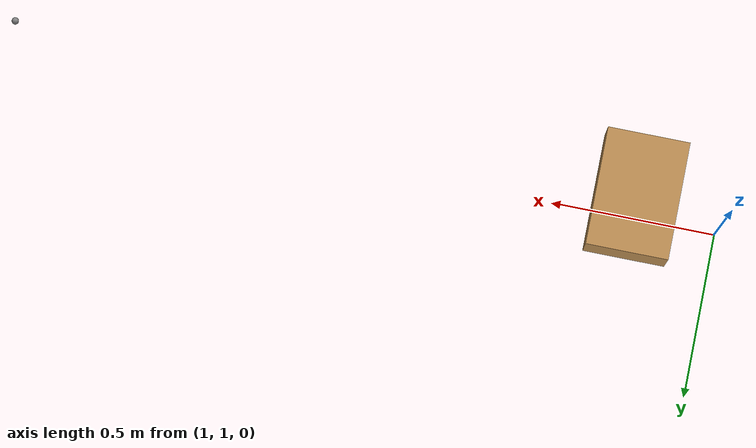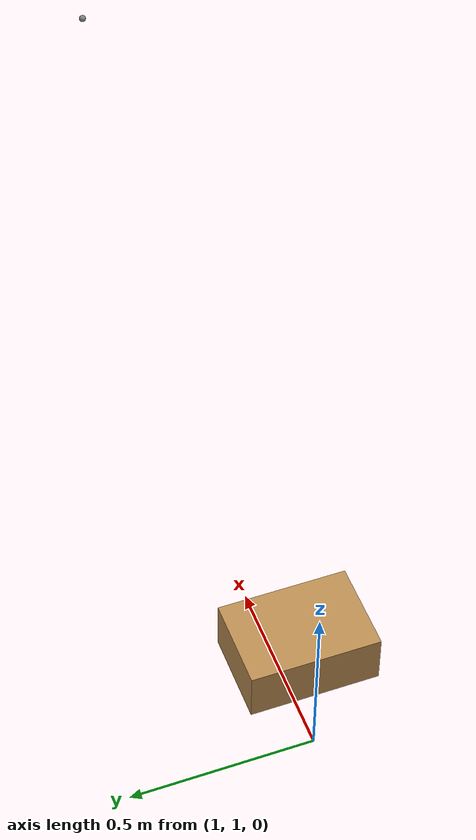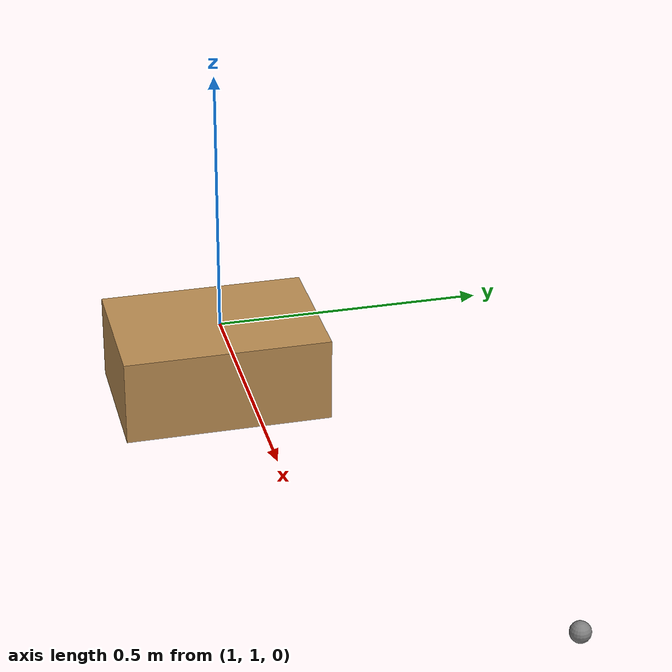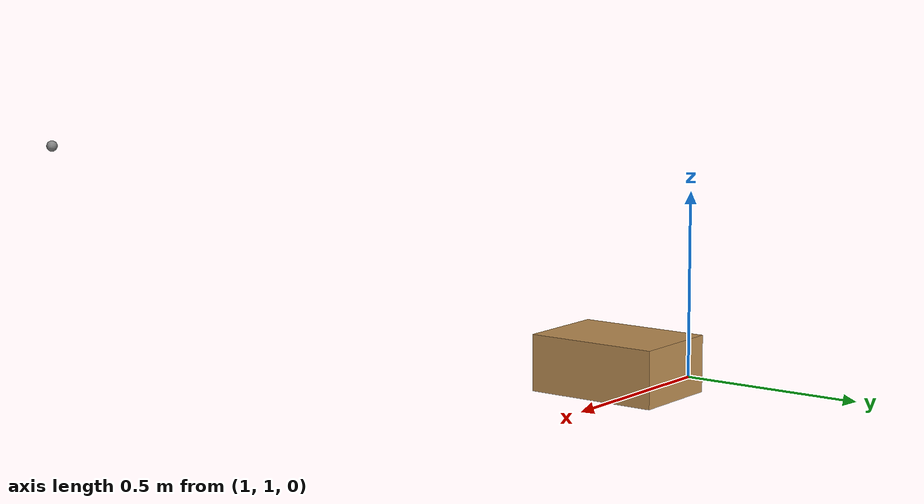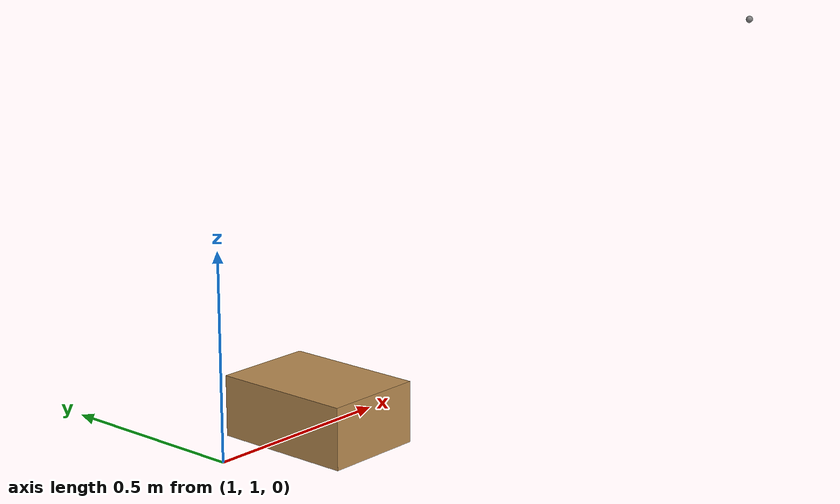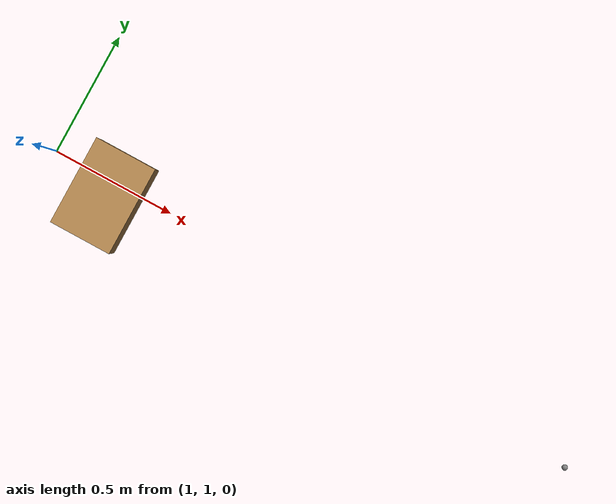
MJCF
<?xml version="1.0" encoding="utf-8"?>
<mujoco model="object_hardware">
   <worldbody>
      <body euler="0 0 0" name="object1" pos="1.256 0.943 0.075">
         <inertial diaginertia="0.01 0.01 0.01" mass="0.1" pos="0 0 0"/>
         <joint type="free"/>
         <geom rgba="0.73 0.55 0.32 1" size="0.125 0.18 0.075" type="box"/>
         <site name="object1_site" pos="0 0 0" size="0.01"/>
      </body>
      <body euler="0 0 0" name="goal" pos="3.086 0.92 0.8">
         <geom rgba="0.1 0.9 0.1 0.1" size="0.01" type="sphere" mass="0.1"/>
         <site name="goal_site" pos="0 0 0" size="0.01"/>
      </body>
   </worldbody>
   <sensor>
      <framepos name="object1_pos" objname="object1_site" objtype="site"/>
      <framepos name="goal_pos" objname="goal_site" objtype="site"/>
   </sensor>
</mujoco>
